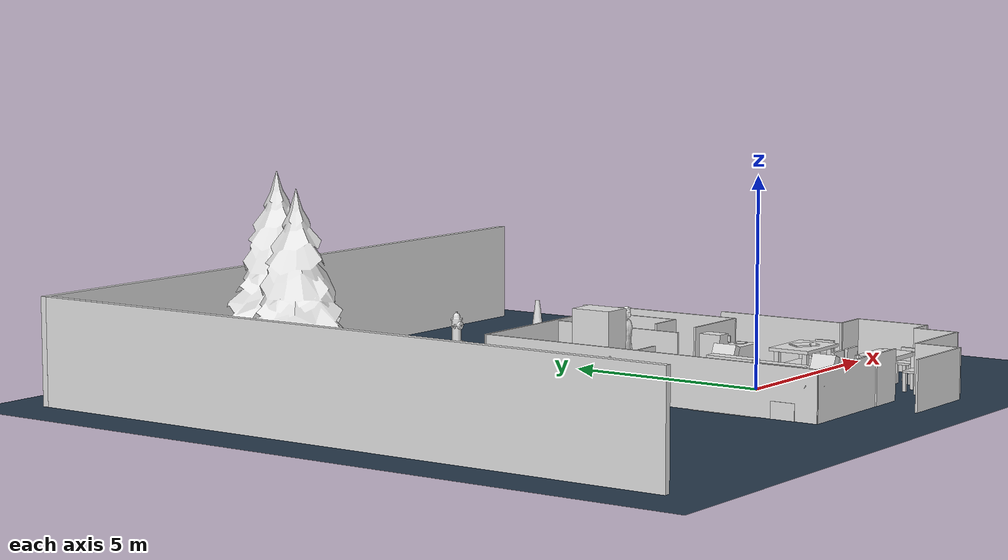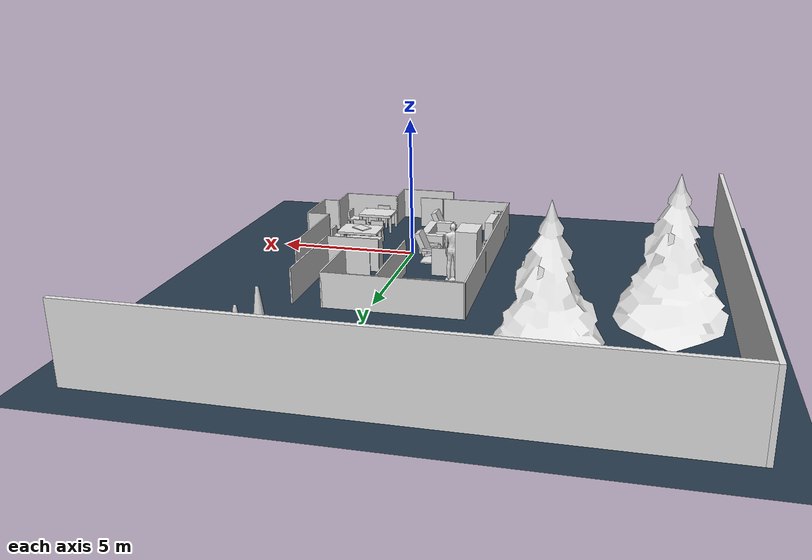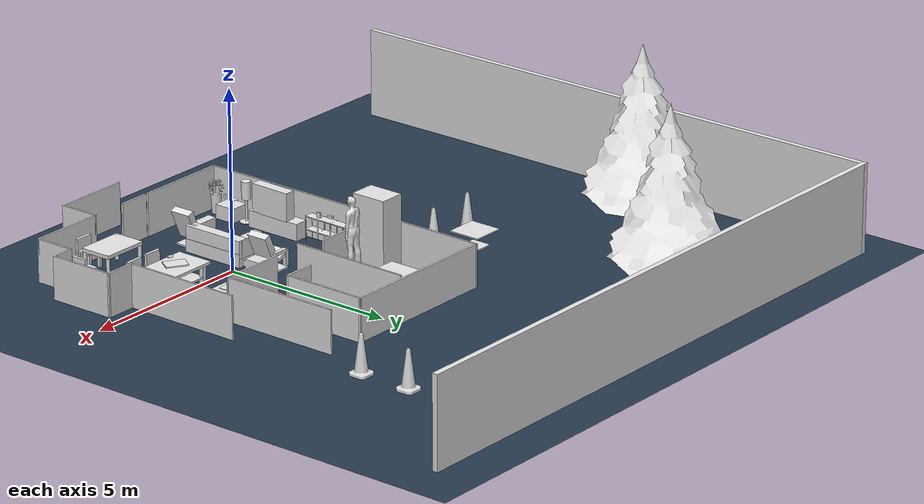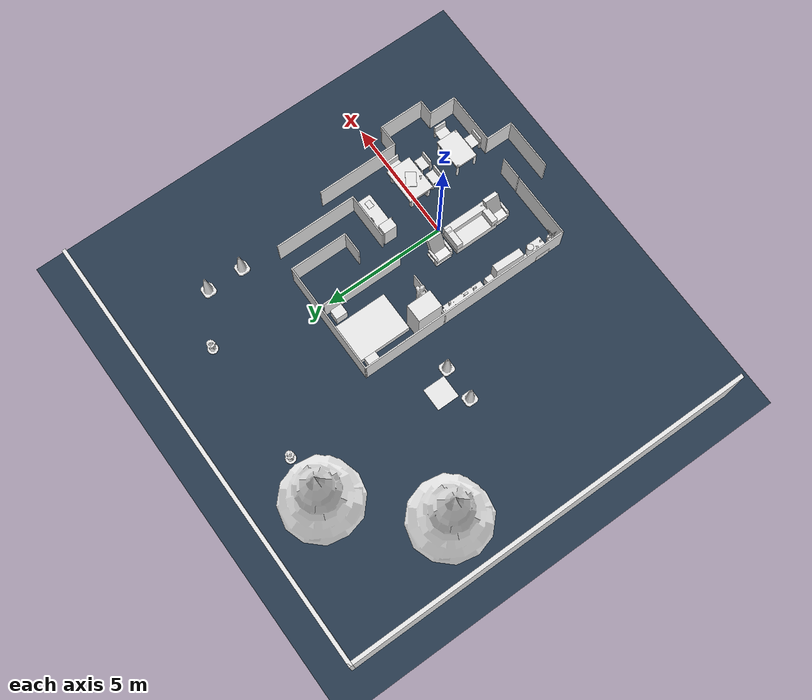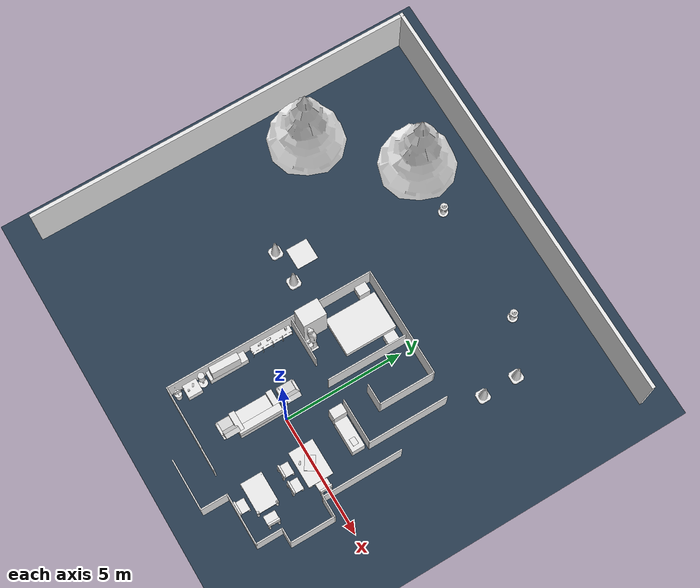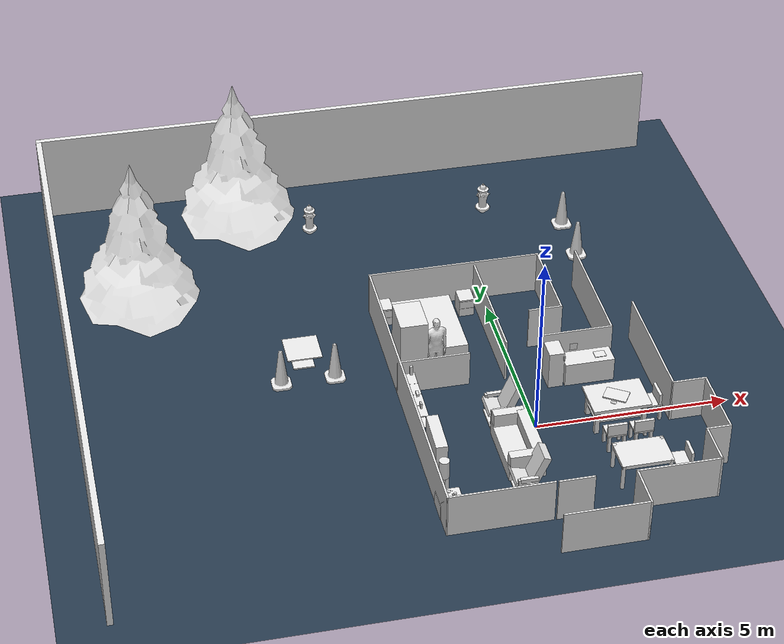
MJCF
<?xml version="1.0" ?>
<mujoco model="isr_testbed">
	<compiler meshdir="../../meshes/" texturedir="../../meshes/textures" angle="radian" autolimits="true" balanceinertia="true" boundmass="0.000001" boundinertia="0.000001"/>
	<default>
		<default class="visual">
			<geom contype="0" conaffinity="0"/>
		</default>
		<default class="collision">
			<geom rgba=".9 .9 .9 1.0"/>
		</default>
	</default>
	<asset>
		<mesh name="construction_cone_collision10d010d010d0" file="stl/construction_cone10d010d010d0.stl"/>
		<mesh name="fire_hydrant_collision" file="stl/fire_hydrant.stl"/>
		<mesh name="pine_tree_collision" file="stl/pine_tree.stl"/>
		<mesh name="standing_collision" file="stl/standing.stl"/>
		<mesh name="plastic_cup_collision" file="stl/plastic_cup.stl"/>
		<mesh name="shelf_collision0d150d20d2" file="stl/shelf0d150d20d2.stl"/>
		<mesh name="plant_floor_small_collision" file="stl/plant_floor_small.stl"/>
		<mesh name="bedroom_nightstand_collision" file="stl/bedroom_nightstand.stl"/>
		<mesh name="cabinet_diamondback_collision1d81d01d0" file="stl/cabinet_diamondback1d81d01d0.stl"/>
		<mesh name="aruco_marker_0_collision0d10d10d1" file="stl/aruco_marker_00d10d10d1.stl"/>
	</asset>
	<asset>
		<texture type="2d" name="texplane" builtin="checker" mark="cross" rgb1="0.2 0.3 0.4" rgb2="0.1 0.15 0.2" markrgb="0.8 0.8 0.8" width="512" height="512"/>
		<material name="matplane" texture="texplane" texuniform="true" reflectance="0.3"/>
	</asset>
	<worldbody>
		<geom name="ground" size="0 0 1" type="plane" condim="1" material="matplane"/>
		<light pos="0 0 4" dir="0 0 -1" directional="true" diffuse="0.6 0.6 0.6" specular="0.2 0.2 0.2"/>
	</worldbody>
	<worldbody>
		<body name="isr_testbed" pos="0.0 0.0 0.0" quat="1.0 0.0 0.0 0.0">
			<body name="wall" pos="-1.19 1.86 0.0" quat="1.0 0.0 0.0 0.0">
				<body name="wall__wall__Wall_2" pos="0.0 0.0 0.0" quat="1.0 0.0 0.0 0.0">
					<geom name="wall__wall__Wall_2_collision_0" pos="-1.26581 9.97568 1.25" quat="0.9999999699875002 0.0 0.0 -0.00024499999754897927" class="collision" type="box" size="8.7892 0.07500000000000001 1.25"/>
				</body>
				<body name="wall__wall__Wall_0" pos="0.0 0.0 0.0" quat="1.0 0.0 0.0 0.0">
					<geom name="wall__wall__Wall_0_collision_0" pos="-9.98 1.805 1.25" quat="-0.7071054825112365 0.0 0.0 0.7071080798594734" class="collision" type="box" size="8.250000000000002 0.07500000000000001 1.25"/>
				</body>
			</body>
			<body name="cone2__ConstructionCone__link" pos="-4.54 2.97 0.0" quat="1.0 0.0 0.0 0.0">
				<geom name="cone2__ConstructionCone__link_collision_0" pos="0.0 0.0 0.0" quat="1.0 0.0 0.0 0.0" class="collision" type="mesh" mesh="construction_cone_collision10d010d010d0"/>
			</body>
			<body name="cone4__ConstructionCone__link" pos="3.03 8.33 0.0" quat="1.0 0.0 0.0 0.0">
				<geom name="cone4__ConstructionCone__link_collision_0" pos="0.0 0.0 0.0" quat="1.0 0.0 0.0 0.0" class="collision" type="mesh" mesh="construction_cone_collision10d010d010d0"/>
			</body>
			<body name="hydrant1__fire_hydrant__link" pos="1.01 9.45 0.0" quat="1.0 0.0 0.0 0.0">
				<geom name="hydrant1__fire_hydrant__link_collision_0" pos="0.0 0.0 0.0" quat="1.0 0.0 0.0 0.0" class="collision" type="mesh" mesh="fire_hydrant_collision"/>
			</body>
			<body name="tree1__pine_tree__link" pos="-6.0 9.45 0.0" quat="1.0 0.0 0.0 0.0">
				<geom name="tree1__pine_tree__link_collision_0" pos="0.0 0.0 0.0" quat="1.0 0.0 0.0 0.0" class="collision" type="mesh" mesh="pine_tree_collision"/>
			</body>
			<body name="human__person_standing__link" pos="-2.04 2.41 0.0" quat="1.0 0.0 0.0 0.0">
				<geom name="human__person_standing__link_collision_0" pos="0.0 0.0 0.02" quat="0.9998000066665778 0.019998666693333084 0.0 0.0" class="collision" type="mesh" mesh="standing_collision"/>
				<geom name="human__person_standing__link_collision_1" pos="0.0 -0.1 0.01" quat="1.0 0.0 0.0 0.0" class="collision" type="box" size="0.25 0.175 0.01"/>
			</body>
			<body name="pizza_box__pizza_box__base_link" pos="2.0 -0.15 0.8" quat="0.8775825618903728 0.0 0.0 0.47942553860420295">
				<geom name="pizza_box__pizza_box__base_link_collision_0" pos="0.0 0.0 0.0175" quat="1.0 0.0 0.0 0.0" class="collision" type="box" size="0.205 0.3 0.0175"/>
			</body>
			<body name="tea_box__tea_box__base_link" pos="-2.85 0.9 0.85" quat="1.0 0.0 0.0 0.0">
				<geom name="tea_box__tea_box__base_link_collision_0" pos="0.0 0.0 0.0" quat="1.0 0.0 0.0 0.0" class="collision" type="box" size="0.0315 0.079 0.0365"/>
			</body>
			<body name="cup1__plastic_cup__link" pos="-2.85 -2.4 0.45" quat="0.8775825618903728 0.0 0.0 0.47942553860420295">
				<geom name="cup1__plastic_cup__link_collision_0" pos="0.0 0.0 0.065" quat="1.0 0.0 0.0 0.0" class="collision" type="mesh" mesh="plastic_cup_collision"/>
			</body>
			<body name="shelf__shelf__base_link" pos="-2.85 1.0 0.0" quat="0.7109135380122774 0.0 0.0 0.7032794192004103">
				<geom name="shelf__shelf__base_link_collision_0" pos="0.0 0.0 0.0" quat="1.0 0.0 0.0 0.0" class="collision" type="mesh" mesh="shelf_collision0d150d20d2"/>
			</body>
			<body name="plant_floor_small__plant_floor_small__base_link" pos="-2.84 -3.05 0.0" quat="1.0 0.0 0.0 0.0">
				<geom name="plant_floor_small__plant_floor_small__base_link_collision_0" pos="0.0 0.0 0.0" quat="1.0 0.0 0.0 0.0" class="collision" type="mesh" mesh="plant_floor_small_collision"/>
			</body>
			<body name="table_bedside__table_bedside__base_link" pos="-2.82 -2.48 0.0" quat="1.0 0.0 0.0 0.0">
				<geom name="table_bedside__table_bedside__base_link_collision_0" pos="0.0 0.0 0.2" quat="1.0 0.0 0.0 0.0" class="collision" type="box" size="0.3 0.3 0.2"/>
			</body>
			<body name="nightstand1__bedroom_nightstand__link_0" pos="-0.69 5.0 0.0" quat="1.0 0.0 0.0 0.0">
				<geom name="nightstand1__bedroom_nightstand__link_0_collision_0" pos="0.0 0.0 0.0" quat="1.0 0.0 0.0 0.0" class="collision" type="mesh" mesh="bedroom_nightstand_collision"/>
			</body>
			<body name="dinning_room_table__dinning_room_table__base_link" pos="2.05802 -2.30976 0.0" quat="1.0 0.0 0.0 0.0">
				<geom name="dinning_room_table__dinning_room_table__base_link_collision_3" pos="-0.65 0.4 0.45" quat="1.0 0.0 0.0 0.0" class="collision" type="cylinder" size="0.05 0.35"/>
				<geom name="dinning_room_table__dinning_room_table__base_link_collision_4" pos="0.55 -0.4 0.45" quat="1.0 0.0 0.0 0.0" class="collision" type="cylinder" size="0.05 0.35"/>
				<geom name="dinning_room_table__dinning_room_table__base_link_collision_2" pos="-0.04 0.015 0.75" quat="1.0 0.0 0.0 0.0" class="collision" type="box" size="0.65 0.45 0.05"/>
				<geom name="dinning_room_table__dinning_room_table__base_link_collision_1" pos="0.55 0.4 0.45" quat="1.0 0.0 0.0 0.0" class="collision" type="cylinder" size="0.05 0.35"/>
				<geom name="dinning_room_table__dinning_room_table__base_link_collision_0" pos="-0.65 -0.4 0.45" quat="1.0 0.0 0.0 0.0" class="collision" type="cylinder" size="0.05 0.35"/>
			</body>
			<body name="cabinet_diamondback__cabinet_diamondback__base_link" pos="0.91 1.69 0.0" quat="0.7086488244966772 0.0 0.0 -0.7055613676637048">
				<geom name="cabinet_diamondback__cabinet_diamondback__base_link_collision_0" pos="0.0 0.0 0.0" quat="1.0 0.0 0.0 0.0" class="collision" type="mesh" mesh="cabinet_diamondback_collision1d81d01d0"/>
			</body>
			<body name="tray_blue_white__tray_blue_white__base_link" pos="2.12 1.67 0.68" quat="0.7179106696109434 0.0 0.0 -0.6961352386273568">
				<geom name="tray_blue_white__tray_blue_white__base_link_collision_0" pos="0.0 0.0 0.0" quat="1.0 0.0 0.0 0.0" class="collision" type="box" size="0.115 0.15 0.008"/>
			</body>
			<body name="chair_dinning_room_2__simple_chair__link_0" pos="2.96 -2.52 0.0" quat="0.7151343726872377 0.0 0.0 0.6989870020259541">
				<geom name="chair_dinning_room_2__simple_chair__link_0_collision_5" pos="-0.05 0.15 0.2" quat="1.0 0.0 0.0 0.0" class="collision" type="box" size="0.04 0.04 0.25"/>
				<geom name="chair_dinning_room_2__simple_chair__link_0_collision_2" pos="0.15 -0.22 0.6" quat="1.0 0.0 0.0 0.0" class="collision" type="box" size="0.25 0.0375 0.19"/>
				<geom name="chair_dinning_room_2__simple_chair__link_0_collision_0" pos="-0.05 -0.25 0.2" quat="1.0 0.0 0.0 0.0" class="collision" type="box" size="0.04 0.04 0.25"/>
				<geom name="chair_dinning_room_2__simple_chair__link_0_collision_3" pos="0.33 0.15 0.2" quat="1.0 0.0 0.0 0.0" class="collision" type="box" size="0.04 0.04 0.25"/>
				<geom name="chair_dinning_room_2__simple_chair__link_0_collision_1" pos="0.15 -0.05 0.45" quat="1.0 0.0 0.0 0.0" class="collision" type="box" size="0.25 0.225 0.025"/>
				<geom name="chair_dinning_room_2__simple_chair__link_0_collision_4" pos="0.33 -0.25 0.2" quat="1.0 0.0 0.0 0.0" class="collision" type="box" size="0.04 0.04 0.25"/>
			</body>
			<body name="chair_kitchen_2__simple_chair__link_0" pos="2.26 -0.97 0.0" quat="1.0 0.0 0.0 0.0">
				<geom name="chair_kitchen_2__simple_chair__link_0_collision_2" pos="0.33 0.15 0.2" quat="1.0 0.0 0.0 0.0" class="collision" type="box" size="0.04 0.04 0.25"/>
				<geom name="chair_kitchen_2__simple_chair__link_0_collision_5" pos="0.33 -0.25 0.2" quat="1.0 0.0 0.0 0.0" class="collision" type="box" size="0.04 0.04 0.25"/>
				<geom name="chair_kitchen_2__simple_chair__link_0_collision_3" pos="0.15 -0.22 0.6" quat="1.0 0.0 0.0 0.0" class="collision" type="box" size="0.25 0.0375 0.19"/>
				<geom name="chair_kitchen_2__simple_chair__link_0_collision_0" pos="0.15 -0.05 0.45" quat="1.0 0.0 0.0 0.0" class="collision" type="box" size="0.25 0.225 0.025"/>
				<geom name="chair_kitchen_2__simple_chair__link_0_collision_4" pos="-0.05 -0.25 0.2" quat="1.0 0.0 0.0 0.0" class="collision" type="box" size="0.04 0.04 0.25"/>
				<geom name="chair_kitchen_2__simple_chair__link_0_collision_1" pos="-0.05 0.15 0.2" quat="1.0 0.0 0.0 0.0" class="collision" type="box" size="0.04 0.04 0.25"/>
			</body>
			<body name="sofa__sofa__link_0" pos="-0.76 -0.9 0.0" quat="1.0 0.0 0.0 0.0">
				<geom name="sofa__sofa__link_0_collision_2" pos="0.0 -0.8 0.5" quat="1.0 0.0 0.0 0.0" class="collision" type="box" size="0.4 0.125 0.25"/>
				<geom name="sofa__sofa__link_0_collision_1" pos="0.35 0.0 0.5" quat="1.0 0.0 0.0 0.0" class="collision" type="box" size="0.15 0.915 0.25"/>
				<geom name="sofa__sofa__link_0_collision_0" pos="0.05 0.0 0.2" quat="1.0 0.0 0.0 0.0" class="collision" type="box" size="0.465 0.915 0.185"/>
				<geom name="sofa__sofa__link_0_collision_3" pos="0.0 0.8 0.5" quat="1.0 0.0 0.0 0.0" class="collision" type="box" size="0.4 0.125 0.25"/>
			</body>
			<body name="chair2__tv_chair__link_0" pos="-0.73 0.57 0.0" quat="0.7073882691671997 0.0 0.0 -0.7068251811053661">
				<geom name="chair2__tv_chair__link_0_collision_3" pos="-0.33 -0.33 0.3" quat="1.0 0.0 0.0 0.0" class="collision" type="box" size="0.05 0.05 0.225"/>
				<geom name="chair2__tv_chair__link_0_collision_2" pos="0.33 -0.1 0.5" quat="1.0 0.0 0.0 0.0" class="collision" type="box" size="0.05 0.225 0.05"/>
				<geom name="chair2__tv_chair__link_0_collision_4" pos="0.33 -0.33 0.3" quat="1.0 0.0 0.0 0.0" class="collision" type="box" size="0.05 0.05 0.225"/>
				<geom name="chair2__tv_chair__link_0_collision_1" pos="-0.33 -0.1 0.5" quat="1.0 0.0 0.0 0.0" class="collision" type="box" size="0.05 0.225 0.05"/>
				<geom name="chair2__tv_chair__link_0_collision_5" pos="0.0 -0.1 0.0" quat="1.0 0.0 0.0 0.0" class="collision" type="box" size="0.35 0.3 0.025"/>
				<geom name="chair2__tv_chair__link_0_collision_0" pos="0.0 0.18 0.65" quat="0.9800665778412416 -0.19866933079506124 0.0 0.0" class="collision" type="box" size="0.3 0.10000000000000002 0.425"/>
				<geom name="chair2__tv_chair__link_0_collision_6" pos="0.0 -0.2 0.35" quat="0.9902159962126372 -0.1395431146442365 0.0 0.0" class="collision" type="box" size="0.35 0.24999999999999994 0.05"/>
			</body>
			<body name="tv_table__tv_table__link_0" pos="-2.81 -0.98 0.0" quat="1.0 0.0 0.0 0.0">
				<geom name="tv_table__tv_table__link_0_collision_0" pos="-0.05 0.05 0.2" quat="1.0 0.0 0.0 0.0" class="collision" type="box" size="0.2 0.825 0.25"/>
			</body>
			<body name="walls" pos="0.49183 0.433522 0.0" quat="1.0 0.0 0.0 0.0">
				<body name="walls__walls__Wall_19" pos="0.0 0.0 0.0" quat="1.0 0.0 0.0 0.0">
					<geom name="walls__walls__Wall_19_collision_0" pos="-2.66199 1.59399 0.5" quat="1.0 0.0 0.0 0.0" class="collision" type="box" size="0.95 0.025 0.5"/>
				</body>
				<body name="walls__walls__Wall_22" pos="0.0 0.0 0.0" quat="1.0 0.0 0.0 0.0">
					<geom name="walls__walls__Wall_22_collision_0" pos="1.028 -4.332 0.6" quat="0.7071054825112364 0.0 0.0 0.7071080798594735" class="collision" type="box" size="0.575 0.025 0.6"/>
				</body>
				<body name="walls__walls__Wall_24" pos="0.0 0.0 0.0" quat="1.0 0.0 0.0 0.0">
					<geom name="walls__walls__Wall_24_collision_0" pos="3.128 -3.232 0.6" quat="0.7071054825112364 0.0 0.0 0.7071080798594735" class="collision" type="box" size="0.575 0.025 0.6"/>
				</body>
				<body name="walls__walls__Wall_26" pos="0.0 0.0 0.0" quat="1.0 0.0 0.0 0.0">
					<geom name="walls__walls__Wall_26_collision_0" pos="3.728 -1.757 0.6" quat="0.7071054825112364 0.0 0.0 0.7071080798594735" class="collision" type="box" size="0.9499999999999997 0.025 0.6"/>
				</body>
				<body name="walls__walls__Wall_36" pos="0.0 0.0 0.0" quat="1.0 0.0 0.0 0.0">
					<geom name="walls__walls__Wall_36_collision_0" pos="1.117 1.66399 0.6" quat="1.0 0.0 0.0 0.0" class="collision" type="box" size="0.95 0.025 0.6"/>
				</body>
				<body name="walls__walls__Wall_49" pos="0.0 0.0 0.0" quat="1.0 0.0 0.0 0.0">
					<geom name="walls__walls__Wall_49_collision_0" pos="-1.28699 5.09399 0.6" quat="1.0 0.0 0.0 0.0" class="collision" type="box" size="2.325 0.025 0.6"/>
				</body>
				<body name="walls__walls__Wall_51" pos="0.0 0.0 0.0" quat="1.0 0.0 0.0 0.0">
					<geom name="walls__walls__Wall_51_collision_0" pos="0.588 2.74399 0.6" quat="1.3267948966775328e-06 0.0 0.0 0.9999999999991198" class="collision" type="box" size="0.45 0.025 0.6"/>
				</body>
				<body name="walls__walls__Wall_58" pos="0.0 0.0 0.0" quat="1.0 0.0 0.0 0.0">
					<geom name="walls__walls__Wall_58_collision_0" pos="2.042 3.33899 0.6" quat="0.7071054825112364 0.0 0.0 0.7071080798594735" class="collision" type="box" size="1.7 0.025 0.6"/>
				</body>
				<body name="walls__walls__Wall_63" pos="0.0 0.0 0.0" quat="1.0 0.0 0.0 0.0">
					<geom name="walls__walls__Wall_63_collision_0" pos="2.878 0.843 0.6" quat="0.7071054825112364 0.0 0.0 0.7071080798594735" class="collision" type="box" size="1.7 0.025 0.6"/>
				</body>
				<body name="walls__walls__Door_4" pos="0.0 0.0 0.0" quat="1.0 0.0 0.0 0.0">
					<geom name="walls__walls__Door_4_collision_0" pos="-0.44425 -3.76409 0.6" quat="0.9999998848000022 0.0 0.0 -0.0004799999815680004" class="collision" type="box" size="0.453 0.025 0.6"/>
				</body>
				<body name="walls__walls__Wall_23" pos="0.0 0.0 0.0" quat="1.0 0.0 0.0 0.0">
					<geom name="walls__walls__Wall_23_collision_0" pos="2.078 -3.782 0.6" quat="1.0 0.0 0.0 0.0" class="collision" type="box" size="1.075 0.025 0.6"/>
				</body>
				<body name="walls__walls__Wall_27" pos="0.0 0.0 0.0" quat="1.0 0.0 0.0 0.0">
					<geom name="walls__walls__Wall_27_collision_0" pos="3.303 -0.832 0.6" quat="1.3267948966775328e-06 0.0 0.0 0.9999999999991198" class="collision" type="box" size="0.45 0.025 0.6"/>
				</body>
				<body name="walls__walls__Wall_50" pos="0.0 0.0 0.0" quat="1.0 0.0 0.0 0.0">
					<geom name="walls__walls__Wall_50_collision_0" pos="1.01299 3.91899 0.6" quat="-0.7071054825112364 0.0 0.0 0.7071080798594735" class="collision" type="box" size="1.2 0.025 0.6"/>
				</body>
				<body name="walls__walls__Wall_61" pos="0.0 0.0 0.0" quat="1.0 0.0 0.0 0.0">
					<geom name="walls__walls__Wall_61_collision_0" pos="-2.27499 -3.756 0.6" quat="1.0 0.0 0.0 0.0" class="collision" type="box" size="1.325 0.025 0.6"/>
				</body>
				<body name="walls__walls__Wall_21" pos="0.0 0.0 0.0" quat="1.0 0.0 0.0 0.0">
					<geom name="walls__walls__Wall_21_collision_0" pos="-0.022 -4.882 0.6" quat="1.0 0.0 0.0 0.0" class="collision" type="box" size="1.075 0.025 0.6"/>
				</body>
				<body name="walls__walls__Wall_48" pos="0.0 0.0 0.0" quat="1.0 0.0 0.0 0.0">
					<geom name="walls__walls__Wall_48_collision_0" pos="-3.58099 0.669 0.6" quat="0.7066280235061142 0.0 0.0 0.7075852149358708" class="collision" type="box" size="4.450005 0.025000000000000005 0.6"/>
				</body>
				<body name="walls__walls__Wall_25" pos="0.0 0.0 0.0" quat="1.0 0.0 0.0 0.0">
					<geom name="walls__walls__Wall_25_collision_0" pos="3.428 -2.682 0.6" quat="1.0 0.0 0.0 0.0" class="collision" type="box" size="0.325 0.025 0.6"/>
				</body>
				<body name="walls__walls__Wall_53" pos="0.0 0.0 0.0" quat="1.0 0.0 0.0 0.0">
					<geom name="walls__walls__Wall_53_collision_0" pos="-0.765 3.24799 0.6" quat="0.7071054825112364 0.0 0.0 0.7071080798594735" class="collision" type="box" size="1.7 0.025 0.6"/>
				</body>
			</body>
			<body name="cone1__ConstructionCone__link" pos="-5.94 2.97 0.0" quat="1.0 0.0 0.0 0.0">
				<geom name="cone1__ConstructionCone__link_collision_0" pos="0.0 0.0 0.0" quat="1.0 0.0 0.0 0.0" class="collision" type="mesh" mesh="construction_cone_collision10d010d010d0"/>
			</body>
			<body name="table_outside__cafe_table__link" pos="-5.25 3.77 0.0" quat="1.0 0.0 0.0 0.0">
				<geom name="table_outside__cafe_table__link_collision_2" pos="0.0 0.0 0.37" quat="1.0 0.0 0.0 0.0" class="collision" type="box" size="0.021 0.021 0.075"/>
				<geom name="table_outside__cafe_table__link_collision_0" pos="0.0 0.0 0.02" quat="1.0 0.0 0.0 0.0" class="collision" type="box" size="0.28 0.28 0.02"/>
				<geom name="table_outside__cafe_table__link_collision_1" pos="0.0 0.0 0.45" quat="1.0 0.0 0.0 0.0" class="collision" type="box" size="0.4565 0.4565 0.0175"/>
			</body>
			<body name="tree2__pine_tree__link" pos="-9.11 6.25 0.0" quat="1.0 0.0 0.0 0.0">
				<geom name="tree2__pine_tree__link_collision_0" pos="0.0 0.0 0.0" quat="1.0 0.0 0.0 0.0" class="collision" type="mesh" mesh="pine_tree_collision"/>
			</body>
			<body name="basmati_rice__basmati_rice__base_link" pos="-2.85 0.5 0.8" quat="1.0 0.0 0.0 0.0">
				<geom name="basmati_rice__basmati_rice__base_link_collision_0" pos="0.0 0.0 0.0" quat="1.0 0.0 0.0 0.0" class="collision" type="box" size="0.0205 0.061 0.085"/>
			</body>
			<body name="cup2__plastic_cup__link" pos="1.83 -0.48 0.8" quat="0.8775825618903728 0.0 0.0 0.47942553860420295">
				<geom name="cup2__plastic_cup__link_collision_0" pos="0.0 0.0 0.065" quat="1.0 0.0 0.0 0.0" class="collision" type="mesh" mesh="plastic_cup_collision"/>
			</body>
			<body name="apple_juice_box__apple_juice__base_link" pos="-2.84 1.64 1.0" quat="1.0 0.0 0.0 0.0">
				<geom name="apple_juice_box__apple_juice__base_link_collision_0" pos="0.0 0.0 0.0055" quat="1.0 0.0 0.0 0.0" class="collision" type="box" size="0.0345 0.0345 0.1295"/>
			</body>
			<body name="nightstand2__bedroom_nightstand__link_0" pos="-2.89 5.03713 0.0" quat="1.0 0.0 0.0 0.0">
				<geom name="nightstand2__bedroom_nightstand__link_0_collision_0" pos="0.0 0.0 0.0" quat="1.0 0.0 0.0 0.0" class="collision" type="mesh" mesh="bedroom_nightstand_collision"/>
			</body>
			<body name="cabinet_ikea_galant__cabinet_ikea_galant__base_link" pos="1.8 1.68 0.0" quat="1.0 0.0 0.0 0.0">
				<geom name="cabinet_ikea_galant__cabinet_ikea_galant__base_link_collision_0" pos="0.0 0.0 0.33" quat="1.0 0.0 0.0 0.0" class="collision" type="box" size="0.65 0.27 0.33"/>
			</body>
			<body name="chair_kitchen_1__simple_chair__link_0" pos="1.57 -0.98 0.0" quat="1.0 0.0 0.0 0.0">
				<geom name="chair_kitchen_1__simple_chair__link_0_collision_3" pos="-0.05 -0.25 0.2" quat="1.0 0.0 0.0 0.0" class="collision" type="box" size="0.04 0.04 0.25"/>
				<geom name="chair_kitchen_1__simple_chair__link_0_collision_2" pos="0.15 -0.05 0.45" quat="1.0 0.0 0.0 0.0" class="collision" type="box" size="0.25 0.225 0.025"/>
				<geom name="chair_kitchen_1__simple_chair__link_0_collision_5" pos="-0.05 0.15 0.2" quat="1.0 0.0 0.0 0.0" class="collision" type="box" size="0.04 0.04 0.25"/>
				<geom name="chair_kitchen_1__simple_chair__link_0_collision_0" pos="0.15 -0.22 0.6" quat="1.0 0.0 0.0 0.0" class="collision" type="box" size="0.25 0.0375 0.19"/>
				<geom name="chair_kitchen_1__simple_chair__link_0_collision_4" pos="0.33 0.15 0.2" quat="1.0 0.0 0.0 0.0" class="collision" type="box" size="0.04 0.04 0.25"/>
				<geom name="chair_kitchen_1__simple_chair__link_0_collision_1" pos="0.33 -0.25 0.2" quat="1.0 0.0 0.0 0.0" class="collision" type="box" size="0.04 0.04 0.25"/>
			</body>
			<body name="chair1__tv_chair__link_0" pos="-0.73 -2.05 0.0" quat="0.7073882691671997 0.0 0.0 -0.7068251811053661">
				<geom name="chair1__tv_chair__link_0_collision_0" pos="0.33 -0.1 0.5" quat="1.0 0.0 0.0 0.0" class="collision" type="box" size="0.05 0.225 0.05"/>
				<geom name="chair1__tv_chair__link_0_collision_1" pos="0.0 0.18 0.65" quat="0.9800665778412416 -0.19866933079506124 0.0 0.0" class="collision" type="box" size="0.3 0.10000000000000002 0.425"/>
				<geom name="chair1__tv_chair__link_0_collision_2" pos="0.0 -0.1 0.0" quat="1.0 0.0 0.0 0.0" class="collision" type="box" size="0.35 0.3 0.025"/>
				<geom name="chair1__tv_chair__link_0_collision_5" pos="-0.33 -0.1 0.5" quat="1.0 0.0 0.0 0.0" class="collision" type="box" size="0.05 0.225 0.05"/>
				<geom name="chair1__tv_chair__link_0_collision_6" pos="0.0 -0.2 0.35" quat="0.9902159962126372 -0.1395431146442365 0.0 0.0" class="collision" type="box" size="0.35 0.24999999999999994 0.05"/>
				<geom name="chair1__tv_chair__link_0_collision_4" pos="-0.33 -0.33 0.3" quat="1.0 0.0 0.0 0.0" class="collision" type="box" size="0.05 0.05 0.225"/>
				<geom name="chair1__tv_chair__link_0_collision_3" pos="0.33 -0.33 0.3" quat="1.0 0.0 0.0 0.0" class="collision" type="box" size="0.05 0.05 0.225"/>
			</body>
			<body name="aruco_marker_0__aruco_marker_0__link_0" pos="1.5 1.96 0.8" quat="0.7071067811865476 0.0 0.0 -0.7071067811865475">
				<geom name="aruco_marker_0__aruco_marker_0__link_0_collision_0" pos="0.0 0.0 0.0" quat="1.0 0.0 0.0 0.0" class="collision" type="mesh" mesh="aruco_marker_0_collision0d10d10d1"/>
			</body>
			<body name="cone3__ConstructionCone__link" pos="3.03 6.84 0.0" quat="1.0 0.0 0.0 0.0">
				<geom name="cone3__ConstructionCone__link_collision_0" pos="0.0 0.0 0.0" quat="1.0 0.0 0.0 0.0" class="collision" type="mesh" mesh="construction_cone_collision10d010d010d0"/>
			</body>
			<body name="wardrobe__wardrobe__base_link" pos="-2.65 2.44 0.0" quat="1.0 0.0 0.0 0.0">
				<geom name="wardrobe__wardrobe__base_link_collision_0" pos="0.0 0.2 1.0" quat="0.7073882691671997 0.0 0.0 0.7068251811053661" class="collision" type="box" size="0.5 0.3600000000000001 1.0"/>
			</body>
			<body name="lamp_ikea_arstid__lamp_ikea_arstid__base_link" pos="-2.85 -2.0 0.0" quat="0.7109135380122774 0.0 0.0 0.7032794192004103">
				<geom name="lamp_ikea_arstid__lamp_ikea_arstid__base_link_collision_0" pos="0.0 0.0 0.9" quat="1.0 0.0 0.0 0.0" class="collision" type="cylinder" size="0.13 0.25"/>
				<geom name="lamp_ikea_arstid__lamp_ikea_arstid__base_link_collision_1" pos="0.0 0.0 0.0" quat="1.0 0.0 0.0 0.0" class="collision" type="cylinder" size="0.18 0.01"/>
				<geom name="lamp_ikea_arstid__lamp_ikea_arstid__base_link_collision_2" pos="0.0 0.0 0.42" quat="1.0 0.0 0.0 0.0" class="collision" type="cylinder" size="0.03 0.4"/>
			</body>
			<body name="table_living_room__table_living_room__base_link" pos="2.0 -0.156695 0.0" quat="0.7086488244966772 0.0 0.0 -0.7055613676637048">
				<geom name="table_living_room__table_living_room__base_link_collision_3" pos="0.35 -0.59 0.39" quat="1.0 0.0 0.0 0.0" class="collision" type="box" size="0.06 0.06 0.375"/>
				<geom name="table_living_room__table_living_room__base_link_collision_5" pos="0.35 0.63 0.39" quat="1.0 0.0 0.0 0.0" class="collision" type="box" size="0.06 0.06 0.375"/>
				<geom name="table_living_room__table_living_room__base_link_collision_4" pos="-0.4 0.63 0.39" quat="1.0 0.0 0.0 0.0" class="collision" type="box" size="0.06 0.06 0.375"/>
				<geom name="table_living_room__table_living_room__base_link_collision_2" pos="-0.4 -0.59 0.39" quat="1.0 0.0 0.0 0.0" class="collision" type="box" size="0.06 0.06 0.375"/>
				<geom name="table_living_room__table_living_room__base_link_collision_1" pos="-0.03 0.025 0.75" quat="1.0 0.0 0.0 0.0" class="collision" type="box" size="0.525 0.75 0.04"/>
				<geom name="table_living_room__table_living_room__base_link_collision_0" pos="-0.03 0.025 0.35" quat="1.0 0.0 0.0 0.0" class="collision" type="box" size="0.4 0.65 0.025"/>
			</body>
			<body name="chair_kitchen_3__simple_chair__link_0" pos="2.88 -0.26 0.0" quat="0.7002847660410397 0.0 0.0 0.7138636049350369">
				<geom name="chair_kitchen_3__simple_chair__link_0_collision_2" pos="0.15 -0.05 0.45" quat="1.0 0.0 0.0 0.0" class="collision" type="box" size="0.25 0.225 0.025"/>
				<geom name="chair_kitchen_3__simple_chair__link_0_collision_5" pos="0.33 0.15 0.2" quat="1.0 0.0 0.0 0.0" class="collision" type="box" size="0.04 0.04 0.25"/>
				<geom name="chair_kitchen_3__simple_chair__link_0_collision_3" pos="-0.05 0.15 0.2" quat="1.0 0.0 0.0 0.0" class="collision" type="box" size="0.04 0.04 0.25"/>
				<geom name="chair_kitchen_3__simple_chair__link_0_collision_4" pos="-0.05 -0.25 0.2" quat="1.0 0.0 0.0 0.0" class="collision" type="box" size="0.04 0.04 0.25"/>
				<geom name="chair_kitchen_3__simple_chair__link_0_collision_0" pos="0.15 -0.22 0.6" quat="1.0 0.0 0.0 0.0" class="collision" type="box" size="0.25 0.0375 0.19"/>
				<geom name="chair_kitchen_3__simple_chair__link_0_collision_1" pos="0.33 -0.25 0.2" quat="1.0 0.0 0.0 0.0" class="collision" type="box" size="0.04 0.04 0.25"/>
			</body>
			<body name="beer__beer__link" pos="-2.73 -2.64 0.6" quat="0.8775825618903728 0.0 0.0 0.47942553860420295">
				<geom name="beer__beer__link_collision_0" pos="0.0 0.0 0.0" quat="1.0 0.0 0.0 0.0" class="collision" type="cylinder" size="0.035 0.06"/>
			</body>
			<body name="chair_dinning_room_1__simple_chair__link_0" pos="1.91 -3.05 0.0" quat="1.0 0.0 0.0 0.0">
				<geom name="chair_dinning_room_1__simple_chair__link_0_collision_5" pos="0.33 0.15 0.2" quat="1.0 0.0 0.0 0.0" class="collision" type="box" size="0.04 0.04 0.25"/>
				<geom name="chair_dinning_room_1__simple_chair__link_0_collision_3" pos="0.15 -0.22 0.6" quat="1.0 0.0 0.0 0.0" class="collision" type="box" size="0.25 0.0375 0.19"/>
				<geom name="chair_dinning_room_1__simple_chair__link_0_collision_1" pos="-0.05 -0.25 0.2" quat="1.0 0.0 0.0 0.0" class="collision" type="box" size="0.04 0.04 0.25"/>
				<geom name="chair_dinning_room_1__simple_chair__link_0_collision_0" pos="0.33 -0.25 0.2" quat="1.0 0.0 0.0 0.0" class="collision" type="box" size="0.04 0.04 0.25"/>
				<geom name="chair_dinning_room_1__simple_chair__link_0_collision_4" pos="-0.05 0.15 0.2" quat="1.0 0.0 0.0 0.0" class="collision" type="box" size="0.04 0.04 0.25"/>
				<geom name="chair_dinning_room_1__simple_chair__link_0_collision_2" pos="0.15 -0.05 0.45" quat="1.0 0.0 0.0 0.0" class="collision" type="box" size="0.25 0.225 0.025"/>
			</body>
			<body name="hydrant2__fire_hydrant__link" pos="-4.0 9.45 0.0" quat="1.0 0.0 0.0 0.0">
				<geom name="hydrant2__fire_hydrant__link_collision_0" pos="0.0 0.0 0.0" quat="1.0 0.0 0.0 0.0" class="collision" type="mesh" mesh="fire_hydrant_collision"/>
			</body>
			<body name="tv__tv__link_0" pos="-2.85 -0.94 0.035264" quat="0.9999155011900349 0.0 0.0 -0.012999633836427429">
				<geom name="tv__tv__link_0_collision_0" pos="0.05 -0.08 0.8" quat="1.0 0.0 0.0 0.0" class="collision" type="box" size="0.15 0.6 0.4"/>
			</body>
			<body name="bed__bed__link_0" pos="-1.94933 4.30992 0.0" quat="1.0 0.0 0.0 0.0">
				<geom name="bed__bed__link_0_collision_0" pos="0.2 0.0 0.0" quat="1.0 0.0 0.0 0.0" class="collision" type="box" size="0.8 1.1 0.3"/>
			</body>
		</body>
	</worldbody>
</mujoco>
